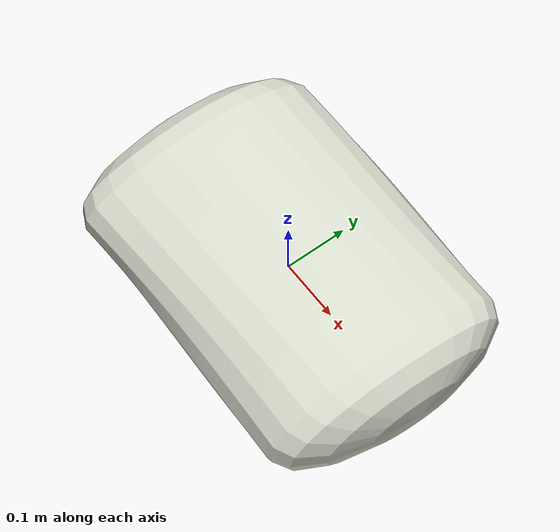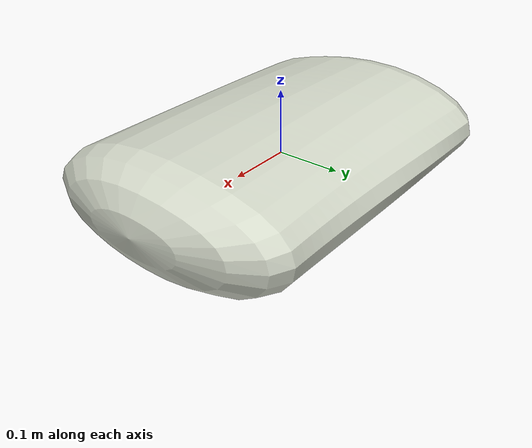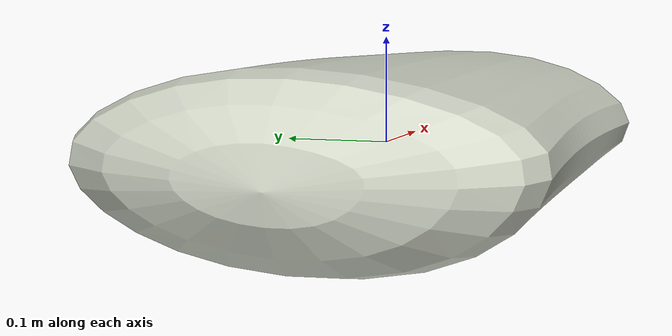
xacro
<?xml version="1.0"?>

<robot xmlns:xacro="http://www.ros.org/wiki/xacro" name="chemical_bag">
  <xacro:include filename="$(find pickcell_description)/urdf/chemical_bag.xacro"/>

  <xacro:arg name="bag_name" default="chemical_bag"/>
  <xacro:arg name="bag_mass" default="22.0"/>
  <xacro:arg name="bag_scale_x" default="1.0"/>
  <xacro:arg name="bag_scale_y" default="1.0"/>
  <xacro:arg name="bag_scale_z" default="1.0"/>
  <xacro:arg name="bag_com_x" default="0.0"/>
  <xacro:arg name="bag_com_y" default="0.0"/>
  <xacro:arg name="bag_com_z" default="0.0"/>

  <xacro:chemical_bag_link
    name="$(arg bag_name)"
    mass="$(arg bag_mass)"
    scale_x="$(arg bag_scale_x)"
    scale_y="$(arg bag_scale_y)"
    scale_z="$(arg bag_scale_z)"
    com_x="$(arg bag_com_x)"
    com_y="$(arg bag_com_y)"
    com_z="$(arg bag_com_z)"/>
</robot>

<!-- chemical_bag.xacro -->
<robot xmlns:xacro="http://www.ros.org/wiki/xacro">
  <!-- Rigid approximation of a filled 20 to 25 kg industrial chemical sack. -->
  <xacro:macro name="chemical_bag" params="parent name xyz rpy mass:=25.0 scale_x:=1.0 scale_y:=1.0 scale_z:=1.0 com_x:=0.0 com_y:=0.0 com_z:=0.0">
    <joint name="${name}_joint" type="fixed">
      <parent link="${parent}"/>
      <child link="${name}"/>
      <!-- Mesh origin is at its centre; 80 mm places its bottom on z=0. -->
      <origin xyz="${xyz}" rpy="${rpy}"/>
    </joint>

    <xacro:chemical_bag_link
      name="${name}"
      mass="${mass}"
      scale_x="${scale_x}"
      scale_y="${scale_y}"
      scale_z="${scale_z}"
      com_x="${com_x}"
      com_y="${com_y}"
      com_z="${com_z}"/>
  </xacro:macro>

  <xacro:macro name="chemical_bag_link" params="name mass:=25.0 scale_x:=1.0 scale_y:=1.0 scale_z:=1.0 com_x:=0.0 com_y:=0.0 com_z:=0.0">
    <link name="${name}">
      <visual name="sack_body">
        <geometry>
          <mesh
            filename="package://pickcell_description/meshes/chemical_bag.obj"
            scale="${scale_x} ${scale_y} ${scale_z}"/>
        </geometry>
        <material name="chemical_sack_white">
          <color rgba="0.82 0.84 0.78 1.0"/>
        </material>
      </visual>

      <!-- Conservative collision geometry for stable planning and dynamics. -->
      <collision name="bag_core">
        <geometry>
          <box size="${0.50 * scale_x} ${0.36 * scale_y} ${0.14 * scale_z}"/>
        </geometry>
      </collision>
      <collision name="bag_left_end">
        <origin xyz="${-0.25 * scale_x} 0 0"/>
        <geometry>
          <sphere radius="${0.075 * min(scale_y, scale_z)}"/>
        </geometry>
      </collision>
      <collision name="bag_right_end">
        <origin xyz="${0.25 * scale_x} 0 0"/>
        <geometry>
          <sphere radius="${0.075 * min(scale_y, scale_z)}"/>
        </geometry>
      </collision>

      <!-- Box-equivalent inertia for 0.60 x 0.40 x 0.16 m and configurable mass. -->
      <inertial>
        <origin xyz="${com_x} ${com_y} ${com_z}"/>
        <mass value="${mass}"/>
        <inertia
          ixx="${mass * ((0.40 * scale_y) ** 2 + (0.16 * scale_z) ** 2) / 12.0}"
          ixy="0.0"
          ixz="0.0"
          iyy="${mass * ((0.60 * scale_x) ** 2 + (0.16 * scale_z) ** 2) / 12.0}"
          iyz="0.0"
          izz="${mass * ((0.60 * scale_x) ** 2 + (0.40 * scale_y) ** 2) / 12.0}"/>
      </inertial>
    </link>
  </xacro:macro>
</robot>
